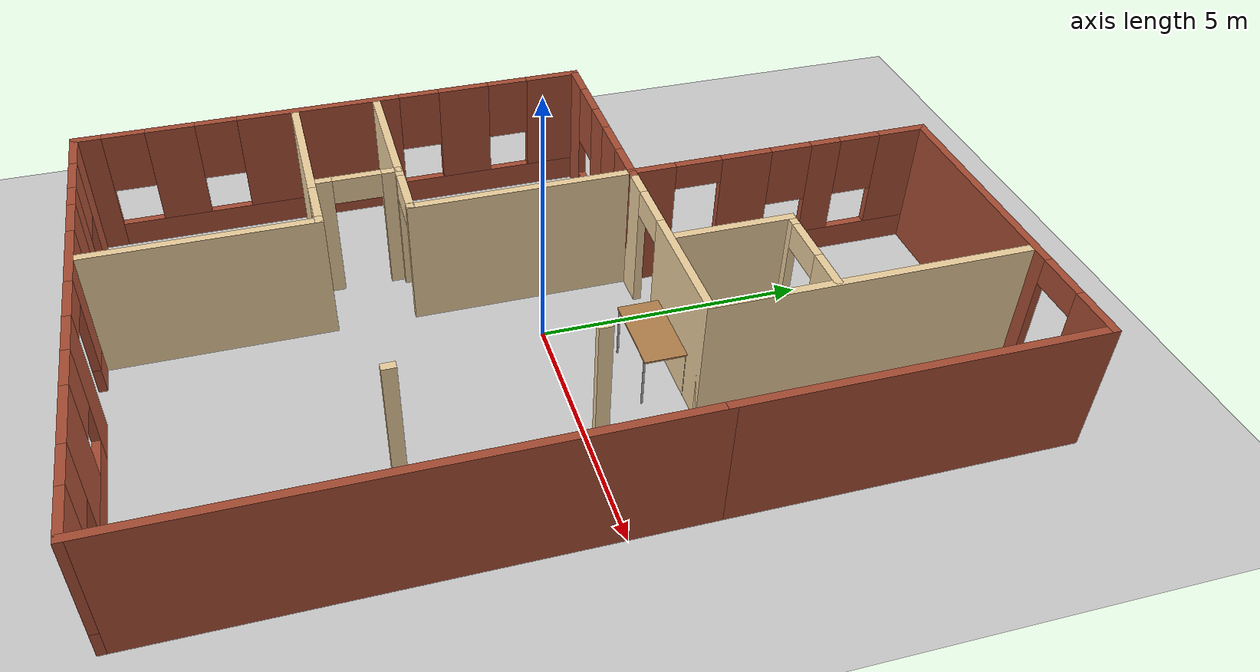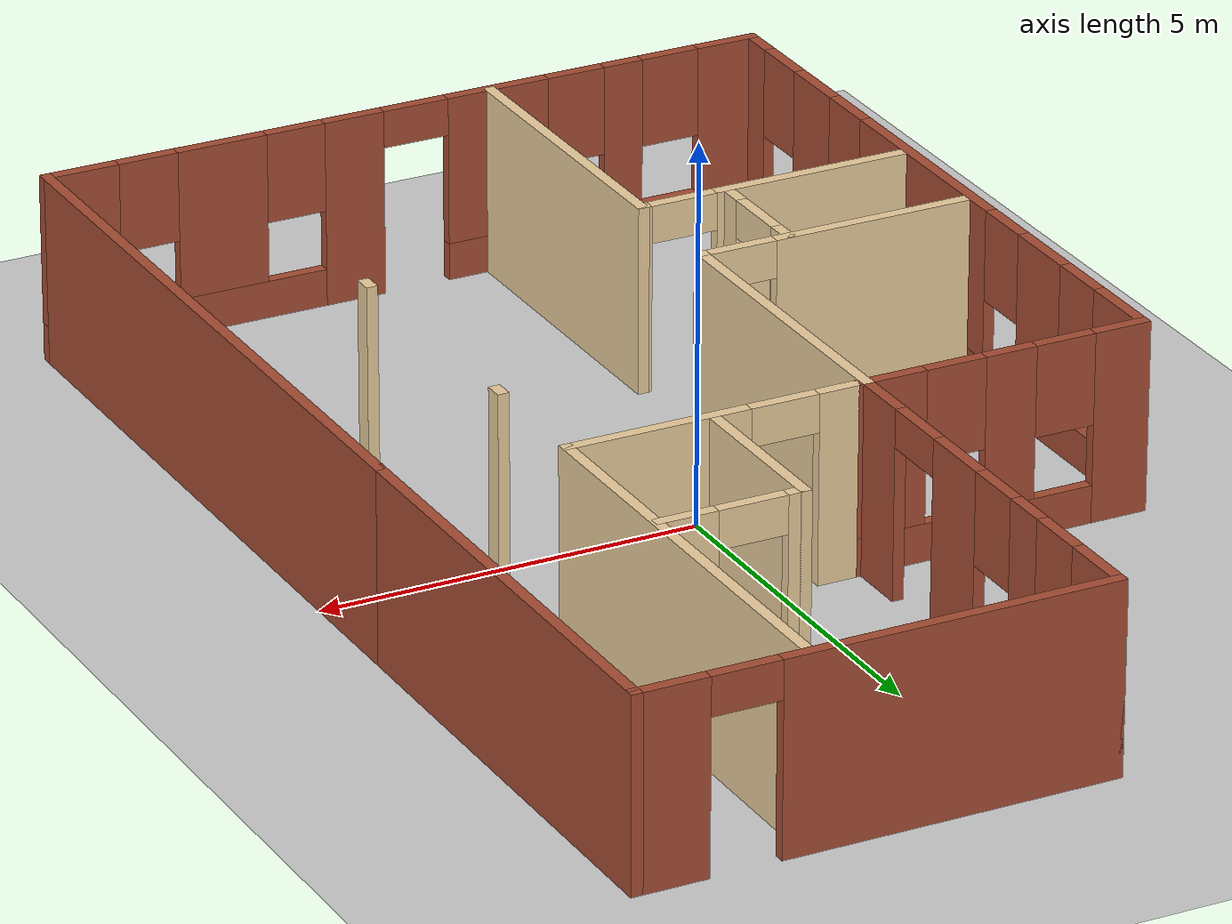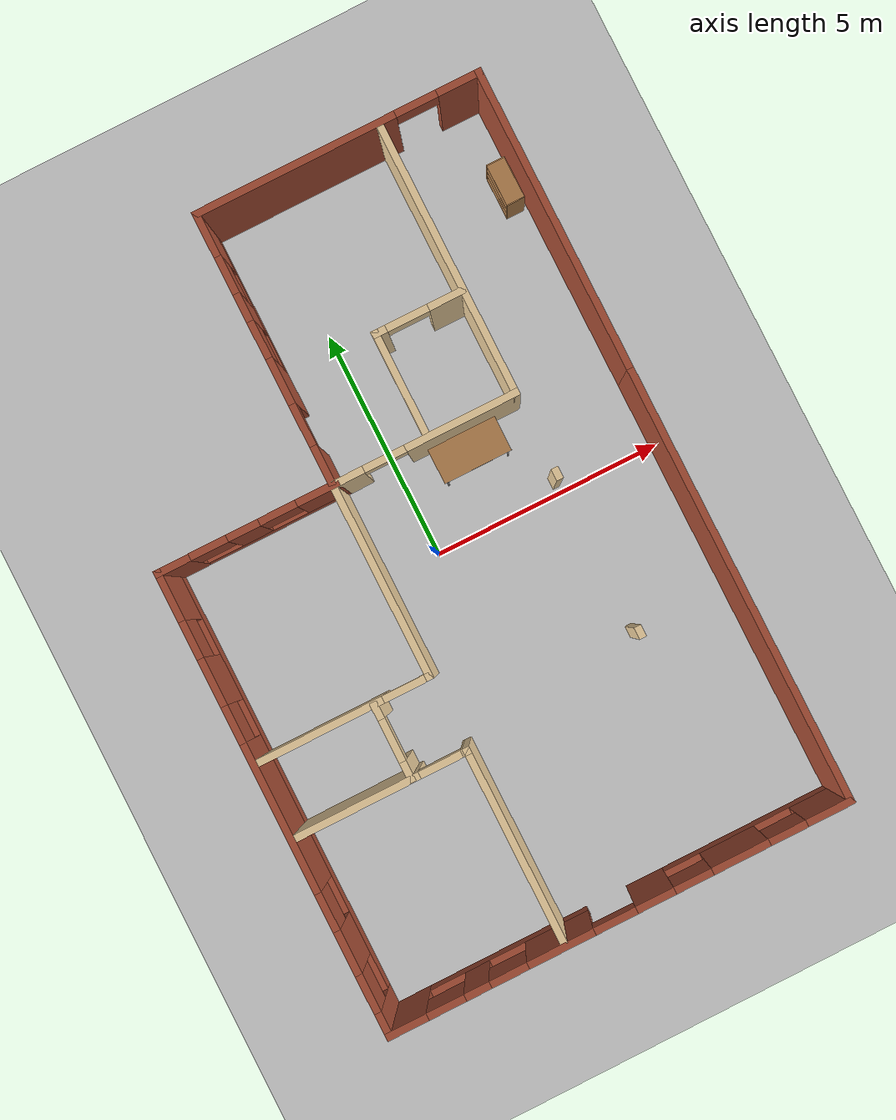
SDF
<sdf version="1.6">
 <world name="default">
  <model name="ground_plane">
   <static>1</static>
   <link name="link">
    <collision name="collision">
     <geometry><plane><normal>0 0 1</normal><size>100 100</size></plane></geometry>
     <surface><friction><ode><mu>100</mu><mu2>50</mu2></ode></friction></surface>
    </collision>
    <visual name="visual">
     <cast_shadows>0</cast_shadows>
     <geometry><plane><normal>0 0 1</normal><size>100 100</size></plane></geometry>
     <material>
      <script><uri>file://media/materials/scripts/gazebo.material</uri><name>Gazebo/Grey</name></script>
     </material>
    </visual>
   </link>
  </model>
  <model name="house">
   <link name="Wall_103">
    <pose>-1.175 4.925 0 0 -0 1.5708</pose>
    <visual name="Wall_103_Visual_0">
     <pose>-2.54292 0 1.25 0 -0 0</pose>
     <geometry><box><size>0.914167 0.15 2.5</size></box></geometry>
     <material>
      <script><uri>file://media/materials/scripts/gazebo.material</uri><name>Gazebo/Bricks</name></script>
      <ambient>1 1 1 1</ambient>
     </material>
     <meta><layer>0</layer></meta>
    </visual>
    <collision name="Wall_103_Collision_0">
     <geometry><box><size>0.914167 0.15 2.5</size></box></geometry>
     <pose>-2.54292 0 1.25 0 -0 0</pose>
    </collision>
    <visual name="Wall_103_Visual_1">
     <pose>-0.689609 0 1.25 0 -0 0</pose>
     <geometry><box><size>0.992449 0.15 2.5</size></box></geometry>
     <material>
      <script><uri>file://media/materials/scripts/gazebo.material</uri><name>Gazebo/Bricks</name></script>
      <ambient>1 1 1 1</ambient>
     </material>
     <meta><layer>0</layer></meta>
    </visual>
    <collision name="Wall_103_Collision_1">
     <geometry><box><size>0.992449 0.15 2.5</size></box></geometry>
     <pose>-0.689609 0 1.25 0 -0 0</pose>
    </collision>
    <visual name="Wall_103_Visual_2">
     <pose>1.40331 0 0.25 0 -0 0</pose>
     <geometry><box><size>3.19338 0.15 0.5</size></box></geometry>
     <material>
      <script><uri>file://media/materials/scripts/gazebo.material</uri><name>Gazebo/Bricks</name></script>
      <ambient>1 1 1 1</ambient>
     </material>
     <meta><layer>0</layer></meta>
    </visual>
    <collision name="Wall_103_Collision_2">
     <geometry><box><size>3.19338 0.15 0.5</size></box></geometry>
     <pose>1.40331 0 0.25 0 -0 0</pose>
    </collision>
    <visual name="Wall_103_Visual_3">
     <pose>0.905775 0 1.5 0 -0 0</pose>
     <geometry><box><size>0.598318 0.15 2</size></box></geometry>
     <material>
      <script><uri>file://media/materials/scripts/gazebo.material</uri><name>Gazebo/Bricks</name></script>
      <ambient>1 1 1 1</ambient>
     </material>
     <meta><layer>0</layer></meta>
    </visual>
    <collision name="Wall_103_Collision_3">
     <geometry><box><size>0.598318 0.15 2</size></box></geometry>
     <pose>0.905775 0 1.5 0 -0 0</pose>
    </collision>
    <visual name="Wall_103_Visual_4">
     <pose>2.50247 0 1.5 0 -0 0</pose>
     <geometry><box><size>0.995066 0.15 2</size></box></geometry>
     <material>
      <script><uri>file://media/materials/scripts/gazebo.material</uri><name>Gazebo/Bricks</name></script>
      <ambient>1 1 1 1</ambient>
     </material>
     <meta><layer>0</layer></meta>
    </visual>
    <collision name="Wall_103_Collision_4">
     <geometry><box><size>0.995066 0.15 2</size></box></geometry>
     <pose>2.50247 0 1.5 0 -0 0</pose>
    </collision>
    <visual name="Wall_103_Visual_5">
     <pose>0.206616 0 1.9 0 -0 0</pose>
     <geometry><box><size>0.8 0.15 1.2</size></box></geometry>
     <material>
      <script><uri>file://media/materials/scripts/gazebo.material</uri><name>Gazebo/Bricks</name></script>
      <ambient>1 1 1 1</ambient>
     </material>
     <meta><layer>0</layer></meta>
    </visual>
    <collision name="Wall_103_Collision_5">
     <geometry><box><size>0.8 0.15 1.2</size></box></geometry>
     <pose>0.206616 0 1.9 0 -0 0</pose>
    </collision>
    <visual name="Wall_103_Visual_6">
     <pose>1.60493 0 1.9 0 -0 0</pose>
     <geometry><box><size>0.8 0.15 1.2</size></box></geometry>
     <material>
      <script><uri>file://media/materials/scripts/gazebo.material</uri><name>Gazebo/Bricks</name></script>
      <ambient>1 1 1 1</ambient>
     </material>
     <meta><layer>0</layer></meta>
    </visual>
    <collision name="Wall_103_Collision_6">
     <geometry><box><size>0.8 0.15 1.2</size></box></geometry>
     <pose>1.60493 0 1.9 0 -0 0</pose>
    </collision>
    <visual name="Wall_103_Visual_7">
     <pose>-1.63583 0 2.25 0 -0 0</pose>
     <geometry><box><size>0.9 0.15 0.5</size></box></geometry>
     <material>
      <script><uri>file://media/materials/scripts/gazebo.material</uri><name>Gazebo/Bricks</name></script>
      <ambient>1 1 1 1</ambient>
     </material>
     <meta><layer>0</layer></meta>
    </visual>
    <collision name="Wall_103_Collision_7">
     <geometry><box><size>0.9 0.15 0.5</size></box></geometry>
     <pose>-1.63583 0 2.25 0 -0 0</pose>
    </collision>
   </link>
   <link name="Wall_105">
    <pose>-3.02063 2 0 0 -0 0</pose>
    <visual name="Wall_105_Visual_0">
     <pose>-1.60034 0 1.25 0 -0 0</pose>
     <geometry><box><size>0.758079 0.15 2.5</size></box></geometry>
     <material>
      <script><uri>file://media/materials/scripts/gazebo.material</uri><name>Gazebo/Bricks</name></script>
      <ambient>1 1 1 1</ambient>
     </material>
     <meta><layer>0</layer></meta>
    </visual>
    <collision name="Wall_105_Collision_0">
     <geometry><box><size>0.758079 0.15 2.5</size></box></geometry>
     <pose>-1.60034 0 1.25 0 -0 0</pose>
    </collision>
    <visual name="Wall_105_Visual_1">
     <pose>0.37904 0 0.25 0 -0 0</pose>
     <geometry><box><size>3.20067 0.15 0.5</size></box></geometry>
     <material>
      <script><uri>file://media/materials/scripts/gazebo.material</uri><name>Gazebo/Bricks</name></script>
      <ambient>1 1 1 1</ambient>
     </material>
     <meta><layer>0</layer></meta>
    </visual>
    <collision name="Wall_105_Collision_1">
     <geometry><box><size>3.20067 0.15 0.5</size></box></geometry>
     <pose>0.37904 0 0.25 0 -0 0</pose>
    </collision>
    <visual name="Wall_105_Visual_2">
     <pose>-0.079355 0 1.5 0 -0 0</pose>
     <geometry><box><size>0.683879 0.15 2</size></box></geometry>
     <material>
      <script><uri>file://media/materials/scripts/gazebo.material</uri><name>Gazebo/Bricks</name></script>
      <ambient>1 1 1 1</ambient>
     </material>
     <meta><layer>0</layer></meta>
    </visual>
    <collision name="Wall_105_Collision_2">
     <geometry><box><size>0.683879 0.15 2</size></box></geometry>
     <pose>-0.079355 0 1.5 0 -0 0</pose>
    </collision>
    <visual name="Wall_105_Visual_3">
     <pose>1.52098 0 1.5 0 -0 0</pose>
     <geometry><box><size>0.91679 0.15 2</size></box></geometry>
     <material>
      <script><uri>file://media/materials/scripts/gazebo.material</uri><name>Gazebo/Bricks</name></script>
      <ambient>1 1 1 1</ambient>
     </material>
     <meta><layer>0</layer></meta>
    </visual>
    <collision name="Wall_105_Collision_3">
     <geometry><box><size>0.91679 0.15 2</size></box></geometry>
     <pose>1.52098 0 1.5 0 -0 0</pose>
    </collision>
    <visual name="Wall_105_Visual_4">
     <pose>-0.821295 0 1.9 0 -0 0</pose>
     <geometry><box><size>0.8 0.15 1.2</size></box></geometry>
     <material>
      <script><uri>file://media/materials/scripts/gazebo.material</uri><name>Gazebo/Bricks</name></script>
      <ambient>1 1 1 1</ambient>
     </material>
     <meta><layer>0</layer></meta>
    </visual>
    <collision name="Wall_105_Collision_4">
     <geometry><box><size>0.8 0.15 1.2</size></box></geometry>
     <pose>-0.821295 0 1.9 0 -0 0</pose>
    </collision>
    <visual name="Wall_105_Visual_5">
     <pose>0.662584 0 1.9 0 -0 0</pose>
     <geometry><box><size>0.8 0.15 1.2</size></box></geometry>
     <material>
      <script><uri>file://media/materials/scripts/gazebo.material</uri><name>Gazebo/Bricks</name></script>
      <ambient>1 1 1 1</ambient>
     </material>
     <meta><layer>0</layer></meta>
    </visual>
    <collision name="Wall_105_Collision_5">
     <geometry><box><size>0.8 0.15 1.2</size></box></geometry>
     <pose>0.662584 0 1.9 0 -0 0</pose>
    </collision>
   </link>
   <link name="Wall_107">
    <pose>1.875 7.85 0 0 -0 0</pose>
    <visual name="Wall_107_Visual_0">
     <pose>-0.942379 0 1.25 0 -0 0</pose>
     <geometry><box><size>4.36524 0.15 2.5</size></box></geometry>
     <material>
      <script><uri>file://media/materials/scripts/gazebo.material</uri><name>Gazebo/Bricks</name></script>
      <ambient>1 1 1 1</ambient>
     </material>
     <meta><layer>0</layer></meta>
    </visual>
    <collision name="Wall_107_Collision_0">
     <geometry><box><size>4.36524 0.15 2.5</size></box></geometry>
     <pose>-0.942379 0 1.25 0 -0 0</pose>
    </collision>
    <visual name="Wall_107_Visual_1">
     <pose>2.63262 0 1.25 0 -0 0</pose>
     <geometry><box><size>0.984758 0.15 2.5</size></box></geometry>
     <material>
      <script><uri>file://media/materials/scripts/gazebo.material</uri><name>Gazebo/Bricks</name></script>
      <ambient>1 1 1 1</ambient>
     </material>
     <meta><layer>0</layer></meta>
    </visual>
    <collision name="Wall_107_Collision_1">
     <geometry><box><size>0.984758 0.15 2.5</size></box></geometry>
     <pose>2.63262 0 1.25 0 -0 0</pose>
    </collision>
    <visual name="Wall_107_Visual_2">
     <pose>1.69024 0 2.25 0 -0 0</pose>
     <geometry><box><size>0.9 0.15 0.5</size></box></geometry>
     <material>
      <script><uri>file://media/materials/scripts/gazebo.material</uri><name>Gazebo/Bricks</name></script>
      <ambient>1 1 1 1</ambient>
     </material>
     <meta><layer>0</layer></meta>
    </visual>
    <collision name="Wall_107_Collision_2">
     <geometry><box><size>0.9 0.15 0.5</size></box></geometry>
     <pose>1.69024 0 2.25 0 -0 0</pose>
    </collision>
   </link>
   <link name="Wall_116">
    <collision name="Wall_116_Collision">
     <geometry><box><size>6.5 0.15 2.5</size></box></geometry>
     <pose>0 0 1.25 0 -0 0</pose>
    </collision>
    <visual name="Wall_116_Visual">
     <pose>0 0 1.25 0 -0 0</pose>
     <geometry><box><size>6.5 0.15 2.5</size></box></geometry>
     <material>
      <script><uri>file://media/materials/scripts/gazebo.material</uri><name>Gazebo/Bricks</name></script>
      <ambient>1 1 1 1</ambient>
     </material>
     <meta><layer>0</layer></meta>
    </visual>
    <pose>4.925 4.675 0 0 0 -1.5708</pose>
   </link>
   <link name="Wall_137">
    <collision name="Wall_137_Collision">
     <geometry><box><size>4.25 0.15 2.5</size></box></geometry>
     <pose>0 0 1.25 0 -0 0</pose>
    </collision>
    <visual name="Wall_137_Visual">
     <pose>0 0 1.25 0 -0 0</pose>
     <geometry><box><size>4.25 0.15 2.5</size></box></geometry>
     <material>
      <script><uri>file://media/materials/scripts/gazebo.material</uri><name>Gazebo/Grey</name></script>
      <ambient>0.921569 0.807843 0.615686 1</ambient>
     </material>
     <meta><layer>0</layer></meta>
    </visual>
    <pose>-1.175 -5.75 0 0 0 -1.5708</pose>
   </link>
   <link name="Wall_139">
    <pose>-2.975 -3.7 0 0 -0 3.14159</pose>
    <visual name="Wall_139_Visual_0">
     <pose>-1.78069 0 1.25 0 -0 0</pose>
     <geometry><box><size>0.188621 0.15 2.5</size></box></geometry>
     <material>
      <script><uri>file://media/materials/scripts/gazebo.material</uri><name>Gazebo/Grey</name></script>
      <ambient>0.921569 0.807843 0.615686 1</ambient>
     </material>
     <meta><layer>0</layer></meta>
    </visual>
    <collision name="Wall_139_Collision_0">
     <geometry><box><size>0.188621 0.15 2.5</size></box></geometry>
     <pose>-1.78069 0 1.25 0 -0 0</pose>
    </collision>
    <visual name="Wall_139_Visual_1">
     <pose>0.54431 0 1.25 0 -0 0</pose>
     <geometry><box><size>2.66138 0.15 2.5</size></box></geometry>
     <material>
      <script><uri>file://media/materials/scripts/gazebo.material</uri><name>Gazebo/Grey</name></script>
      <ambient>0.921569 0.807843 0.615686 1</ambient>
     </material>
     <meta><layer>0</layer></meta>
    </visual>
    <collision name="Wall_139_Collision_1">
     <geometry><box><size>2.66138 0.15 2.5</size></box></geometry>
     <pose>0.54431 0 1.25 0 -0 0</pose>
    </collision>
    <visual name="Wall_139_Visual_2">
     <pose>-1.23638 0 2.25 0 -0 0</pose>
     <geometry><box><size>0.9 0.15 0.5</size></box></geometry>
     <material>
      <script><uri>file://media/materials/scripts/gazebo.material</uri><name>Gazebo/Grey</name></script>
      <ambient>0.921569 0.807843 0.615686 1</ambient>
     </material>
     <meta><layer>0</layer></meta>
    </visual>
    <collision name="Wall_139_Collision_2">
     <geometry><box><size>0.9 0.15 0.5</size></box></geometry>
     <pose>-1.23638 0 2.25 0 -0 0</pose>
    </collision>
   </link>
   <link name="Wall_143">
    <pose>-2.36246 -2.90327 0 0 0 -1.5708</pose>
    <visual name="Wall_143_Visual_0">
     <pose>-0.667997 0 1.25 0 -0 0</pose>
     <geometry><box><size>0.373609 0.15 2.5</size></box></geometry>
     <material>
      <script><uri>file://media/materials/scripts/gazebo.material</uri><name>Gazebo/Grey</name></script>
      <ambient>0.921569 0.807843 0.615686 1</ambient>
     </material>
     <meta><layer>0</layer></meta>
    </visual>
    <collision name="Wall_143_Collision_0">
     <geometry><box><size>0.373609 0.15 2.5</size></box></geometry>
     <pose>-0.667997 0 1.25 0 -0 0</pose>
    </collision>
    <visual name="Wall_143_Visual_1">
     <pose>0.636805 0 1.25 0 -0 0</pose>
     <geometry><box><size>0.435994 0.15 2.5</size></box></geometry>
     <material>
      <script><uri>file://media/materials/scripts/gazebo.material</uri><name>Gazebo/Grey</name></script>
      <ambient>0.921569 0.807843 0.615686 1</ambient>
     </material>
     <meta><layer>0</layer></meta>
    </visual>
    <collision name="Wall_143_Collision_1">
     <geometry><box><size>0.435994 0.15 2.5</size></box></geometry>
     <pose>0.636805 0 1.25 0 -0 0</pose>
    </collision>
    <visual name="Wall_143_Visual_2">
     <pose>-0.031192 0 2.25 0 -0 0</pose>
     <geometry><box><size>0.9 0.15 0.5</size></box></geometry>
     <material>
      <script><uri>file://media/materials/scripts/gazebo.material</uri><name>Gazebo/Grey</name></script>
      <ambient>0.921569 0.807843 0.615686 1</ambient>
     </material>
     <meta><layer>0</layer></meta>
    </visual>
    <collision name="Wall_143_Collision_2">
     <geometry><box><size>0.9 0.15 0.5</size></box></geometry>
     <pose>-0.031192 0 2.25 0 -0 0</pose>
    </collision>
   </link>
   <link name="Wall_149">
    <pose>0.829374 2 0 0 -0 0</pose>
    <visual name="Wall_149_Visual_0">
     <pose>-1.67334 0 1.25 0 -0 0</pose>
     <geometry><box><size>0.653328 0.15 2.5</size></box></geometry>
     <material>
      <script><uri>file://media/materials/scripts/gazebo.material</uri><name>Gazebo/Grey</name></script>
      <ambient>0.921569 0.807843 0.615686 1</ambient>
     </material>
     <meta><layer>0</layer></meta>
    </visual>
    <collision name="Wall_149_Collision_0">
     <geometry><box><size>0.653328 0.15 2.5</size></box></geometry>
     <pose>-1.67334 0 1.25 0 -0 0</pose>
    </collision>
    <visual name="Wall_149_Visual_1">
     <pose>0.776664 0 1.25 0 -0 0</pose>
     <geometry><box><size>2.44667 0.15 2.5</size></box></geometry>
     <material>
      <script><uri>file://media/materials/scripts/gazebo.material</uri><name>Gazebo/Grey</name></script>
      <ambient>0.921569 0.807843 0.615686 1</ambient>
     </material>
     <meta><layer>0</layer></meta>
    </visual>
    <collision name="Wall_149_Collision_1">
     <geometry><box><size>2.44667 0.15 2.5</size></box></geometry>
     <pose>0.776664 0 1.25 0 -0 0</pose>
    </collision>
    <visual name="Wall_149_Visual_2">
     <pose>-0.896672 0 2.25 0 -0 0</pose>
     <geometry><box><size>0.9 0.15 0.5</size></box></geometry>
     <material>
      <script><uri>file://media/materials/scripts/gazebo.material</uri><name>Gazebo/Grey</name></script>
      <ambient>0.921569 0.807843 0.615686 1</ambient>
     </material>
     <meta><layer>0</layer></meta>
    </visual>
    <collision name="Wall_149_Collision_2">
     <geometry><box><size>0.9 0.15 0.5</size></box></geometry>
     <pose>-0.896672 0 2.25 0 -0 0</pose>
    </collision>
   </link>
   <link name="Wall_151">
    <collision name="Wall_151_Collision">
     <geometry><box><size>6 0.15 2.5</size></box></geometry>
     <pose>0 0 1.25 0 -0 0</pose>
    </collision>
    <visual name="Wall_151_Visual">
     <pose>0 0 1.25 0 -0 0</pose>
     <geometry><box><size>6 0.15 2.5</size></box></geometry>
     <material>
      <script><uri>file://media/materials/scripts/gazebo.material</uri><name>Gazebo/Grey</name></script>
      <ambient>0.921569 0.807843 0.615686 1</ambient>
     </material>
     <meta><layer>0</layer></meta>
    </visual>
    <pose>2.75437 4.925 0 0 -0 1.5708</pose>
   </link>
   <link name="Wall_153">
    <collision name="Wall_153_Collision">
     <geometry><box><size>2.25 0.15 2.5</size></box></geometry>
     <pose>0 0 1.25 0 -0 0</pose>
    </collision>
    <visual name="Wall_153_Visual">
     <pose>0 0 1.25 0 -0 0</pose>
     <geometry><box><size>2.25 0.15 2.5</size></box></geometry>
     <material>
      <script><uri>file://media/materials/scripts/gazebo.material</uri><name>Gazebo/Grey</name></script>
      <ambient>0.921569 0.807843 0.615686 1</ambient>
     </material>
     <meta><layer>0</layer></meta>
    </visual>
    <pose>0.863268 3.17275 0 0 -0 1.5708</pose>
   </link>
   <link name="Wall_154">
    <pose>1.78827 4.22275 0 0 -0 0</pose>
    <visual name="Wall_154_Visual_0">
     <pose>-0.847175 0 1.25 0 -0 0</pose>
     <geometry><box><size>0.30565 0.15 2.5</size></box></geometry>
     <material>
      <script><uri>file://media/materials/scripts/gazebo.material</uri><name>Gazebo/Grey</name></script>
      <ambient>0.921569 0.807843 0.615686 1</ambient>
     </material>
     <meta><layer>0</layer></meta>
    </visual>
    <collision name="Wall_154_Collision_0">
     <geometry><box><size>0.30565 0.15 2.5</size></box></geometry>
     <pose>-0.847175 0 1.25 0 -0 0</pose>
    </collision>
    <visual name="Wall_154_Visual_1">
     <pose>0.602825 0 1.25 0 -0 0</pose>
     <geometry><box><size>0.79435 0.15 2.5</size></box></geometry>
     <material>
      <script><uri>file://media/materials/scripts/gazebo.material</uri><name>Gazebo/Grey</name></script>
      <ambient>0.921569 0.807843 0.615686 1</ambient>
     </material>
     <meta><layer>0</layer></meta>
    </visual>
    <collision name="Wall_154_Collision_1">
     <geometry><box><size>0.79435 0.15 2.5</size></box></geometry>
     <pose>0.602825 0 1.25 0 -0 0</pose>
    </collision>
    <visual name="Wall_154_Visual_2">
     <pose>-0.24435 0 2.25 0 -0 0</pose>
     <geometry><box><size>0.9 0.15 0.5</size></box></geometry>
     <material>
      <script><uri>file://media/materials/scripts/gazebo.material</uri><name>Gazebo/Grey</name></script>
      <ambient>0.921569 0.807843 0.615686 1</ambient>
     </material>
     <meta><layer>0</layer></meta>
    </visual>
    <collision name="Wall_154_Collision_2">
     <geometry><box><size>0.9 0.15 0.5</size></box></geometry>
     <pose>-0.24435 0 2.25 0 -0 0</pose>
    </collision>
   </link>
   <link name="Wall_156">
    <collision name="Wall_156_Collision">
     <geometry><box><size>0.25 0.15 2.5</size></box></geometry>
     <pose>0 0 1.25 0 -0 0</pose>
    </collision>
    <visual name="Wall_156_Visual">
     <pose>0 0 1.25 0 -0 0</pose>
     <geometry><box><size>0.25 0.15 2.5</size></box></geometry>
     <material>
      <script><uri>file://media/materials/scripts/gazebo.material</uri><name>Gazebo/Grey</name></script>
      <ambient>0.921569 0.807843 0.615686 1</ambient>
     </material>
     <meta><layer>0</layer></meta>
    </visual>
    <pose>2.76084 0.255188 0 0 0 -1.5708</pose>
   </link>
   <link name="Wall_158">
    <collision name="Wall_158_Collision">
     <geometry><box><size>0.25 0.15 2.5</size></box></geometry>
     <pose>0 0 1.25 0 -0 0</pose>
    </collision>
    <visual name="Wall_158_Visual">
     <pose>0 0 1.25 0 -0 0</pose>
     <geometry><box><size>0.25 0.15 2.5</size></box></geometry>
     <material>
      <script><uri>file://media/materials/scripts/gazebo.material</uri><name>Gazebo/Grey</name></script>
      <ambient>0.921569 0.807843 0.615686 1</ambient>
     </material>
     <meta><layer>0</layer></meta>
    </visual>
    <pose>2.80209 -3.16869 0 0 0 -1.5708</pose>
   </link>
   <link name="Wall_62">
    <pose>0 -7.85 0 0 -0 0</pose>
    <visual name="Wall_62_Visual_0">
     <pose>-4.55783 0 1.25 0 -0 0</pose>
     <geometry><box><size>0.88435 0.15 2.5</size></box></geometry>
     <material>
      <script><uri>file://media/materials/scripts/gazebo.material</uri><name>Gazebo/Bricks</name></script>
      <ambient>1 1 1 1</ambient>
     </material>
     <meta><layer>0</layer></meta>
    </visual>
    <collision name="Wall_62_Collision_0">
     <geometry><box><size>0.88435 0.15 2.5</size></box></geometry>
     <pose>-4.55783 0 1.25 0 -0 0</pose>
    </collision>
    <visual name="Wall_62_Visual_1">
     <pose>0.7542 0 1.25 0 -0 0</pose>
     <geometry><box><size>0.820686 0.15 2.5</size></box></geometry>
     <material>
      <script><uri>file://media/materials/scripts/gazebo.material</uri><name>Gazebo/Bricks</name></script>
      <ambient>1 1 1 1</ambient>
     </material>
     <meta><layer>0</layer></meta>
    </visual>
    <collision name="Wall_62_Collision_1">
     <geometry><box><size>0.820686 0.15 2.5</size></box></geometry>
     <pose>0.7542 0 1.25 0 -0 0</pose>
    </collision>
    <visual name="Wall_62_Visual_2">
     <pose>-2.3359 0 0.25 0 -0 0</pose>
     <geometry><box><size>3.55951 0.15 0.5</size></box></geometry>
     <material>
      <script><uri>file://media/materials/scripts/gazebo.material</uri><name>Gazebo/Bricks</name></script>
      <ambient>1 1 1 1</ambient>
     </material>
     <meta><layer>0</layer></meta>
    </visual>
    <collision name="Wall_62_Collision_2">
     <geometry><box><size>3.55951 0.15 0.5</size></box></geometry>
     <pose>-2.3359 0 0.25 0 -0 0</pose>
    </collision>
    <visual name="Wall_62_Visual_3">
     <pose>3.08227 0 0.25 0 -0 0</pose>
     <geometry><box><size>3.83546 0.15 0.5</size></box></geometry>
     <material>
      <script><uri>file://media/materials/scripts/gazebo.material</uri><name>Gazebo/Bricks</name></script>
      <ambient>1 1 1 1</ambient>
     </material>
     <meta><layer>0</layer></meta>
    </visual>
    <collision name="Wall_62_Collision_3">
     <geometry><box><size>3.83546 0.15 0.5</size></box></geometry>
     <pose>3.08227 0 0.25 0 -0 0</pose>
    </collision>
    <visual name="Wall_62_Visual_4">
     <pose>-3.04531 0 1.5 0 -0 0</pose>
     <geometry><box><size>0.540674 0.15 2</size></box></geometry>
     <material>
      <script><uri>file://media/materials/scripts/gazebo.material</uri><name>Gazebo/Bricks</name></script>
      <ambient>1 1 1 1</ambient>
     </material>
     <meta><layer>0</layer></meta>
    </visual>
    <collision name="Wall_62_Collision_4">
     <geometry><box><size>0.540674 0.15 2</size></box></geometry>
     <pose>-3.04531 0 1.5 0 -0 0</pose>
    </collision>
    <visual name="Wall_62_Visual_5">
     <pose>-1.26556 0 1.5 0 -0 0</pose>
     <geometry><box><size>1.41883 0.15 2</size></box></geometry>
     <material>
      <script><uri>file://media/materials/scripts/gazebo.material</uri><name>Gazebo/Bricks</name></script>
      <ambient>1 1 1 1</ambient>
     </material>
     <meta><layer>0</layer></meta>
    </visual>
    <collision name="Wall_62_Collision_5">
     <geometry><box><size>1.41883 0.15 2</size></box></geometry>
     <pose>-1.26556 0 1.5 0 -0 0</pose>
    </collision>
    <visual name="Wall_62_Visual_6">
     <pose>-1.26556 0 1.5 0 -0 0</pose>
     <geometry><box><size>1.41883 0.15 2</size></box></geometry>
     <material>
      <script><uri>file://media/materials/scripts/gazebo.material</uri><name>Gazebo/Bricks</name></script>
      <ambient>1 1 1 1</ambient>
     </material>
     <meta><layer>0</layer></meta>
    </visual>
    <collision name="Wall_62_Collision_6">
     <geometry><box><size>1.41883 0.15 2</size></box></geometry>
     <pose>-1.26556 0 1.5 0 -0 0</pose>
    </collision>
    <visual name="Wall_62_Visual_7">
     <pose>2.57521 0 1.5 0 -0 0</pose>
     <geometry><box><size>1.22132 0.15 2</size></box></geometry>
     <material>
      <script><uri>file://media/materials/scripts/gazebo.material</uri><name>Gazebo/Bricks</name></script>
      <ambient>1 1 1 1</ambient>
     </material>
     <meta><layer>0</layer></meta>
    </visual>
    <collision name="Wall_62_Collision_7">
     <geometry><box><size>1.22132 0.15 2</size></box></geometry>
     <pose>2.57521 0 1.5 0 -0 0</pose>
    </collision>
    <visual name="Wall_62_Visual_8">
     <pose>4.49293 0 1.5 0 -0 0</pose>
     <geometry><box><size>1.01413 0.15 2</size></box></geometry>
     <material>
      <script><uri>file://media/materials/scripts/gazebo.material</uri><name>Gazebo/Bricks</name></script>
      <ambient>1 1 1 1</ambient>
     </material>
     <meta><layer>0</layer></meta>
    </visual>
    <collision name="Wall_62_Collision_8">
     <geometry><box><size>1.01413 0.15 2</size></box></geometry>
     <pose>4.49293 0 1.5 0 -0 0</pose>
    </collision>
    <visual name="Wall_62_Visual_9">
     <pose>-3.71565 0 1.9 0 -0 0</pose>
     <geometry><box><size>0.8 0.15 1.2</size></box></geometry>
     <material>
      <script><uri>file://media/materials/scripts/gazebo.material</uri><name>Gazebo/Bricks</name></script>
      <ambient>1 1 1 1</ambient>
     </material>
     <meta><layer>0</layer></meta>
    </visual>
    <collision name="Wall_62_Collision_9">
     <geometry><box><size>0.8 0.15 1.2</size></box></geometry>
     <pose>-3.71565 0 1.9 0 -0 0</pose>
    </collision>
    <visual name="Wall_62_Visual_10">
     <pose>1.56454 0 1.9 0 -0 0</pose>
     <geometry><box><size>0.8 0.15 1.2</size></box></geometry>
     <material>
      <script><uri>file://media/materials/scripts/gazebo.material</uri><name>Gazebo/Bricks</name></script>
      <ambient>1 1 1 1</ambient>
     </material>
     <meta><layer>0</layer></meta>
    </visual>
    <collision name="Wall_62_Collision_10">
     <geometry><box><size>0.8 0.15 1.2</size></box></geometry>
     <pose>1.56454 0 1.9 0 -0 0</pose>
    </collision>
    <visual name="Wall_62_Visual_11">
     <pose>-2.37498 0 1.9 0 -0 0</pose>
     <geometry><box><size>0.8 0.15 1.2</size></box></geometry>
     <material>
      <script><uri>file://media/materials/scripts/gazebo.material</uri><name>Gazebo/Bricks</name></script>
      <ambient>1 1 1 1</ambient>
     </material>
     <meta><layer>0</layer></meta>
    </visual>
    <collision name="Wall_62_Collision_11">
     <geometry><box><size>0.8 0.15 1.2</size></box></geometry>
     <pose>-2.37498 0 1.9 0 -0 0</pose>
    </collision>
    <visual name="Wall_62_Visual_12">
     <pose>3.58587 0 1.9 0 -0 0</pose>
     <geometry><box><size>0.8 0.15 1.2</size></box></geometry>
     <material>
      <script><uri>file://media/materials/scripts/gazebo.material</uri><name>Gazebo/Bricks</name></script>
      <ambient>1 1 1 1</ambient>
     </material>
     <meta><layer>0</layer></meta>
    </visual>
    <collision name="Wall_62_Collision_12">
     <geometry><box><size>0.8 0.15 1.2</size></box></geometry>
     <pose>3.58587 0 1.9 0 -0 0</pose>
    </collision>
    <visual name="Wall_62_Visual_13">
     <pose>-0.106143 0 2.25 0 -0 0</pose>
     <geometry><box><size>0.9 0.15 0.5</size></box></geometry>
     <material>
      <script><uri>file://media/materials/scripts/gazebo.material</uri><name>Gazebo/Bricks</name></script>
      <ambient>1 1 1 1</ambient>
     </material>
     <meta><layer>0</layer></meta>
    </visual>
    <collision name="Wall_62_Collision_13">
     <geometry><box><size>0.9 0.15 0.5</size></box></geometry>
     <pose>-0.106143 0 2.25 0 -0 0</pose>
    </collision>
    <visual name="Wall_62_Visual_14">
     <pose>-0.106143 0 2.25 0 -0 0</pose>
     <geometry><box><size>0.9 0.15 0.5</size></box></geometry>
     <material>
      <script><uri>file://media/materials/scripts/gazebo.material</uri><name>Gazebo/Bricks</name></script>
      <ambient>1 1 1 1</ambient>
     </material>
     <meta><layer>0</layer></meta>
    </visual>
    <collision name="Wall_62_Collision_14">
     <geometry><box><size>0.9 0.15 0.5</size></box></geometry>
     <pose>-0.106143 0 2.25 0 -0 0</pose>
    </collision>
   </link>
   <link name="Wall_64">
    <pose>-4.925 -2.925 0 0 -0 1.5708</pose>
    <visual name="Wall_64_Visual_0">
     <pose>-4.71504 0 1.25 0 -0 0</pose>
     <geometry><box><size>0.569922 0.15 2.5</size></box></geometry>
     <material>
      <script><uri>file://media/materials/scripts/gazebo.material</uri><name>Gazebo/Bricks</name></script>
      <ambient>1 1 1 1</ambient>
     </material>
     <meta><layer>0</layer></meta>
    </visual>
    <collision name="Wall_64_Collision_0">
     <geometry><box><size>0.569922 0.15 2.5</size></box></geometry>
     <pose>-4.71504 0 1.25 0 -0 0</pose>
    </collision>
    <visual name="Wall_64_Visual_1">
     <pose>0.284961 0 0.25 0 -0 0</pose>
     <geometry><box><size>9.43008 0.15 0.5</size></box></geometry>
     <material>
      <script><uri>file://media/materials/scripts/gazebo.material</uri><name>Gazebo/Bricks</name></script>
      <ambient>1 1 1 1</ambient>
     </material>
     <meta><layer>0</layer></meta>
    </visual>
    <collision name="Wall_64_Collision_1">
     <geometry><box><size>9.43008 0.15 0.5</size></box></geometry>
     <pose>0.284961 0 0.25 0 -0 0</pose>
    </collision>
    <visual name="Wall_64_Visual_2">
     <pose>-3.1638 0 1.5 0 -0 0</pose>
     <geometry><box><size>0.932564 0.15 2</size></box></geometry>
     <material>
      <script><uri>file://media/materials/scripts/gazebo.material</uri><name>Gazebo/Bricks</name></script>
      <ambient>1 1 1 1</ambient>
     </material>
     <meta><layer>0</layer></meta>
    </visual>
    <collision name="Wall_64_Collision_2">
     <geometry><box><size>0.932564 0.15 2</size></box></geometry>
     <pose>-3.1638 0 1.5 0 -0 0</pose>
    </collision>
    <visual name="Wall_64_Visual_3">
     <pose>-0.307129 0 1.5 0 -0 0</pose>
     <geometry><box><size>3.18077 0.15 2</size></box></geometry>
     <material>
      <script><uri>file://media/materials/scripts/gazebo.material</uri><name>Gazebo/Bricks</name></script>
      <ambient>1 1 1 1</ambient>
     </material>
     <meta><layer>0</layer></meta>
    </visual>
    <collision name="Wall_64_Collision_3">
     <geometry><box><size>3.18077 0.15 2</size></box></geometry>
     <pose>-0.307129 0 1.5 0 -0 0</pose>
    </collision>
    <visual name="Wall_64_Visual_4">
     <pose>2.59079 0 1.5 0 -0 0</pose>
     <geometry><box><size>1.01507 0.15 2</size></box></geometry>
     <material>
      <script><uri>file://media/materials/scripts/gazebo.material</uri><name>Gazebo/Bricks</name></script>
      <ambient>1 1 1 1</ambient>
     </material>
     <meta><layer>0</layer></meta>
    </visual>
    <collision name="Wall_64_Collision_4">
     <geometry><box><size>1.01507 0.15 2</size></box></geometry>
     <pose>2.59079 0 1.5 0 -0 0</pose>
    </collision>
    <visual name="Wall_64_Visual_5">
     <pose>4.44916 0 1.5 0 -0 0</pose>
     <geometry><box><size>1.10168 0.15 2</size></box></geometry>
     <material>
      <script><uri>file://media/materials/scripts/gazebo.material</uri><name>Gazebo/Bricks</name></script>
      <ambient>1 1 1 1</ambient>
     </material>
     <meta><layer>0</layer></meta>
    </visual>
    <collision name="Wall_64_Collision_5">
     <geometry><box><size>1.10168 0.15 2</size></box></geometry>
     <pose>4.44916 0 1.5 0 -0 0</pose>
    </collision>
    <visual name="Wall_64_Visual_6">
     <pose>-4.03008 0 1.9 0 -0 0</pose>
     <geometry><box><size>0.8 0.15 1.2</size></box></geometry>
     <material>
      <script><uri>file://media/materials/scripts/gazebo.material</uri><name>Gazebo/Bricks</name></script>
      <ambient>1 1 1 1</ambient>
     </material>
     <meta><layer>0</layer></meta>
    </visual>
    <collision name="Wall_64_Collision_6">
     <geometry><box><size>0.8 0.15 1.2</size></box></geometry>
     <pose>-4.03008 0 1.9 0 -0 0</pose>
    </collision>
    <visual name="Wall_64_Visual_7">
     <pose>-2.29751 0 1.9 0 -0 0</pose>
     <geometry><box><size>0.8 0.15 1.2</size></box></geometry>
     <material>
      <script><uri>file://media/materials/scripts/gazebo.material</uri><name>Gazebo/Bricks</name></script>
      <ambient>1 1 1 1</ambient>
     </material>
     <meta><layer>0</layer></meta>
    </visual>
    <collision name="Wall_64_Collision_7">
     <geometry><box><size>0.8 0.15 1.2</size></box></geometry>
     <pose>-2.29751 0 1.9 0 -0 0</pose>
    </collision>
    <visual name="Wall_64_Visual_8">
     <pose>1.68326 0 1.9 0 -0 0</pose>
     <geometry><box><size>0.8 0.15 1.2</size></box></geometry>
     <material>
      <script><uri>file://media/materials/scripts/gazebo.material</uri><name>Gazebo/Bricks</name></script>
      <ambient>1 1 1 1</ambient>
     </material>
     <meta><layer>0</layer></meta>
    </visual>
    <collision name="Wall_64_Collision_8">
     <geometry><box><size>0.8 0.15 1.2</size></box></geometry>
     <pose>1.68326 0 1.9 0 -0 0</pose>
    </collision>
    <visual name="Wall_64_Visual_9">
     <pose>3.49832 0 1.9 0 -0 0</pose>
     <geometry><box><size>0.8 0.15 1.2</size></box></geometry>
     <material>
      <script><uri>file://media/materials/scripts/gazebo.material</uri><name>Gazebo/Bricks</name></script>
      <ambient>1 1 1 1</ambient>
     </material>
     <meta><layer>0</layer></meta>
    </visual>
    <collision name="Wall_64_Collision_9">
     <geometry><box><size>0.8 0.15 1.2</size></box></geometry>
     <pose>3.49832 0 1.9 0 -0 0</pose>
    </collision>
   </link>
   <link name="Wall_66">
    <collision name="Wall_66_Collision">
     <geometry><box><size>9.5 0.15 2.5</size></box></geometry>
     <pose>0 0 1.25 0 -0 0</pose>
    </collision>
    <visual name="Wall_66_Visual">
     <pose>0 0 1.25 0 -0 0</pose>
     <geometry><box><size>9.5 0.15 2.5</size></box></geometry>
     <material>
      <script><uri>file://media/materials/scripts/gazebo.material</uri><name>Gazebo/Bricks</name></script>
      <ambient>1 1 1 1</ambient>
     </material>
     <meta><layer>0</layer></meta>
    </visual>
    <pose>4.925 -3.175 0 0 0 -1.5708</pose>
   </link>
   <link name="Wall_91">
    <pose>-2.975 -2.1 0 0 -0 0</pose>
    <visual name="Wall_91_Visual_0">
     <pose>-0.53002 0 1.25 0 -0 0</pose>
     <geometry><box><size>2.68996 0.15 2.5</size></box></geometry>
     <material>
      <script><uri>file://media/materials/scripts/gazebo.material</uri><name>Gazebo/Grey</name></script>
      <ambient>0.921569 0.807843 0.615686 1</ambient>
     </material>
     <meta><layer>0</layer></meta>
    </visual>
    <collision name="Wall_91_Collision_0">
     <geometry><box><size>2.68996 0.15 2.5</size></box></geometry>
     <pose>-0.53002 0 1.25 0 -0 0</pose>
    </collision>
    <visual name="Wall_91_Visual_1">
     <pose>1.79498 0 1.25 0 -0 0</pose>
     <geometry><box><size>0.16004 0.15 2.5</size></box></geometry>
     <material>
      <script><uri>file://media/materials/scripts/gazebo.material</uri><name>Gazebo/Grey</name></script>
      <ambient>0.921569 0.807843 0.615686 1</ambient>
     </material>
     <meta><layer>0</layer></meta>
    </visual>
    <collision name="Wall_91_Collision_1">
     <geometry><box><size>0.16004 0.15 2.5</size></box></geometry>
     <pose>1.79498 0 1.25 0 -0 0</pose>
    </collision>
    <visual name="Wall_91_Visual_2">
     <pose>1.26496 0 2.25 0 -0 0</pose>
     <geometry><box><size>0.9 0.15 0.5</size></box></geometry>
     <material>
      <script><uri>file://media/materials/scripts/gazebo.material</uri><name>Gazebo/Grey</name></script>
      <ambient>0.921569 0.807843 0.615686 1</ambient>
     </material>
     <meta><layer>0</layer></meta>
    </visual>
    <collision name="Wall_91_Collision_2">
     <geometry><box><size>0.9 0.15 0.5</size></box></geometry>
     <pose>1.26496 0 2.25 0 -0 0</pose>
    </collision>
   </link>
   <link name="Wall_92">
    <collision name="Wall_92_Collision">
     <geometry><box><size>4.25 0.15 2.5</size></box></geometry>
     <pose>0 0 1.25 0 -0 0</pose>
    </collision>
    <visual name="Wall_92_Visual">
     <pose>0 0 1.25 0 -0 0</pose>
     <geometry><box><size>4.25 0.15 2.5</size></box></geometry>
     <material>
      <script><uri>file://media/materials/scripts/gazebo.material</uri><name>Gazebo/Grey</name></script>
      <ambient>0.921569 0.807843 0.615686 1</ambient>
     </material>
     <meta><layer>0</layer></meta>
    </visual>
    <pose>-1.175 -0.05 0 0 -0 1.5708</pose>
   </link>
   <static>1</static>
  </model>
  <model name="table">
   <static>1</static>
   <link name="link">
    <collision name="surface">
     <pose>0 0 1 0 -0 0</pose>
     <geometry><box><size>1.5 0.8 0.03</size></box></geometry>
     <surface><friction><ode><mu>0.6</mu><mu2>0.6</mu2></ode></friction></surface>
    </collision>
    <visual name="visual1">
     <pose>0 0 1 0 -0 0</pose>
     <geometry><box><size>1.5 0.8 0.03</size></box></geometry>
     <material>
      <script><uri>file://media/materials/scripts/gazebo.material</uri><name>Gazebo/Wood</name></script>
     </material>
    </visual>
    <collision name="front_left_leg">
     <pose>0.68 0.38 0.5 0 -0 0</pose>
     <geometry><cylinder><radius>0.02</radius><length>1</length></cylinder></geometry>
    </collision>
    <visual name="front_left_leg">
     <pose>0.68 0.38 0.5 0 -0 0</pose>
     <geometry><cylinder><radius>0.02</radius><length>1</length></cylinder></geometry>
     <material>
      <script><uri>file://media/materials/scripts/gazebo.material</uri><name>Gazebo/Grey</name></script>
     </material>
    </visual>
    <collision name="front_right_leg">
     <pose>0.68 -0.38 0.5 0 -0 0</pose>
     <geometry><cylinder><radius>0.02</radius><length>1</length></cylinder></geometry>
    </collision>
    <visual name="front_right_leg">
     <pose>0.68 -0.38 0.5 0 -0 0</pose>
     <geometry><cylinder><radius>0.02</radius><length>1</length></cylinder></geometry>
     <material>
      <script><uri>file://media/materials/scripts/gazebo.material</uri><name>Gazebo/Grey</name></script>
     </material>
    </visual>
    <collision name="back_right_leg">
     <pose>-0.68 -0.38 0.5 0 -0 0</pose>
     <geometry><cylinder><radius>0.02</radius><length>1</length></cylinder></geometry>
    </collision>
    <visual name="back_right_leg">
     <pose>-0.68 -0.38 0.5 0 -0 0</pose>
     <geometry><cylinder><radius>0.02</radius><length>1</length></cylinder></geometry>
     <material>
      <script><uri>file://media/materials/scripts/gazebo.material</uri><name>Gazebo/Grey</name></script>
     </material>
    </visual>
    <collision name="back_left_leg">
     <pose>-0.68 0.38 0.5 0 -0 0</pose>
     <geometry><cylinder><radius>0.02</radius><length>1</length></cylinder></geometry>
    </collision>
    <visual name="back_left_leg">
     <pose>-0.68 0.38 0.5 0 -0 0</pose>
     <geometry><cylinder><radius>0.02</radius><length>1</length></cylinder></geometry>
     <material>
      <script><uri>file://media/materials/scripts/gazebo.material</uri><name>Gazebo/Grey</name></script>
     </material>
    </visual>
   </link>
   <pose>1.50353 1.56087 0 0 -0 0</pose>
  </model>
  <model name="bookshelf_1">
   <static>1</static>
   <link name="link">
    <inertial><mass>1</mass></inertial>
    <collision name="back">
     <pose>0 0.005 0.6 0 -0 0</pose>
     <geometry><box><size>0.9 0.01 1.2</size></box></geometry>
    </collision>
    <visual name="visual1">
     <pose>0 0.005 0.6 0 -0 0</pose>
     <geometry><box><size>0.9 0.01 1.2</size></box></geometry>
     <material>
      <script><uri>file://media/materials/scripts/gazebo.material</uri><name>Gazebo/Wood</name></script>
     </material>
    </visual>
    <collision name="left_side">
     <pose>0.45 -0.195 0.6 0 -0 0</pose>
     <geometry><box><size>0.02 0.4 1.2</size></box></geometry>
    </collision>
    <visual name="visual2">
     <pose>0.45 -0.195 0.6 0 -0 0</pose>
     <geometry><box><size>0.02 0.4 1.2</size></box></geometry>
     <material>
      <script><uri>file://media/materials/scripts/gazebo.material</uri><name>Gazebo/Wood</name></script>
     </material>
    </visual>
    <collision name="right_side">
     <pose>-0.45 -0.195 0.6 0 -0 0</pose>
     <geometry><box><size>0.02 0.4 1.2</size></box></geometry>
    </collision>
    <visual name="visual3">
     <pose>-0.45 -0.195 0.6 0 -0 0</pose>
     <geometry><box><size>0.02 0.4 1.2</size></box></geometry>
     <material>
      <script><uri>file://media/materials/scripts/gazebo.material</uri><name>Gazebo/Wood</name></script>
     </material>
    </visual>
    <collision name="bottom">
     <pose>0 -0.195 0.03 0 -0 0</pose>
     <geometry><box><size>0.88 0.4 0.06</size></box></geometry>
    </collision>
    <visual name="visual4">
     <pose>0 -0.195 0.03 0 -0 0</pose>
     <geometry><box><size>0.88 0.4 0.06</size></box></geometry>
     <material>
      <script><uri>file://media/materials/scripts/gazebo.material</uri><name>Gazebo/Wood</name></script>
     </material>
    </visual>
    <collision name="top">
     <pose>0 -0.195 1.19 0 -0 0</pose>
     <geometry><box><size>0.88 0.4 0.02</size></box></geometry>
    </collision>
    <visual name="visual5">
     <pose>0 -0.195 1.19 0 -0 0</pose>
     <geometry><box><size>0.88 0.4 0.02</size></box></geometry>
     <material>
      <script><uri>file://media/materials/scripts/gazebo.material</uri><name>Gazebo/Wood</name></script>
     </material>
    </visual>
    <collision name="low_shelf">
     <pose>0 -0.195 0.43 0 -0 0</pose>
     <geometry><box><size>0.88 0.4 0.02</size></box></geometry>
    </collision>
    <visual name="visual6">
     <pose>0 -0.195 0.43 0 -0 0</pose>
     <geometry><box><size>0.88 0.4 0.02</size></box></geometry>
     <material>
      <script><uri>file://media/materials/scripts/gazebo.material</uri><name>Gazebo/Wood</name></script>
     </material>
    </visual>
    <collision name="high_shelf">
     <pose>0 -0.195 0.8 0 -0 0</pose>
     <geometry><box><size>0.88 0.4 0.02</size></box></geometry>
    </collision>
    <visual name="visual7">
     <pose>0 -0.195 0.8 0 -0 0</pose>
     <geometry><box><size>0.88 0.4 0.02</size></box></geometry>
     <material>
      <script><uri>file://media/materials/scripts/gazebo.material</uri><name>Gazebo/Wood</name></script>
     </material>
    </visual>
   </link>
   <pose>4.76349 6.00981 0 0 0 -1.5707</pose>
  </model>
 </world>
</sdf>
